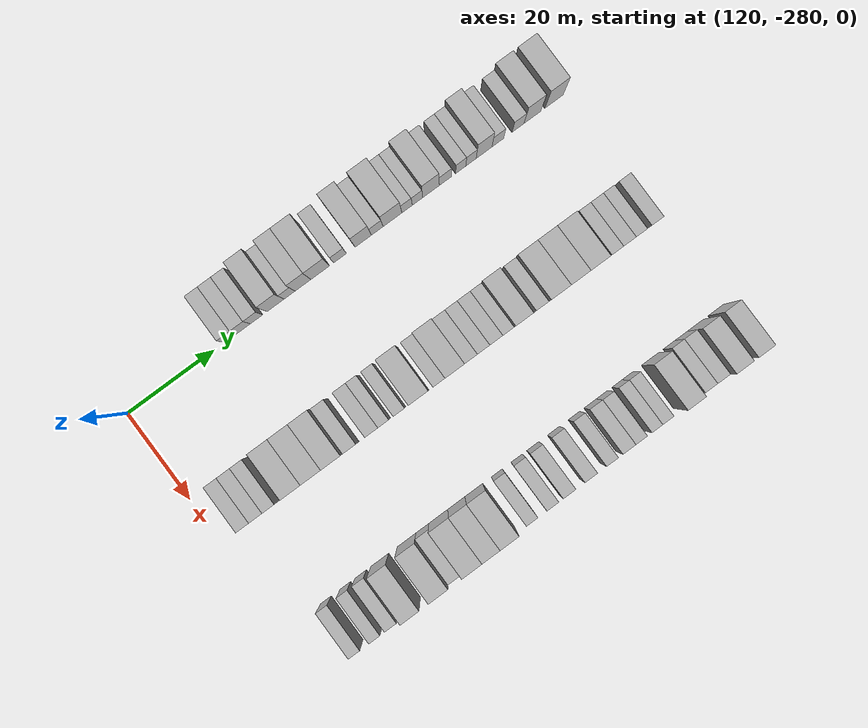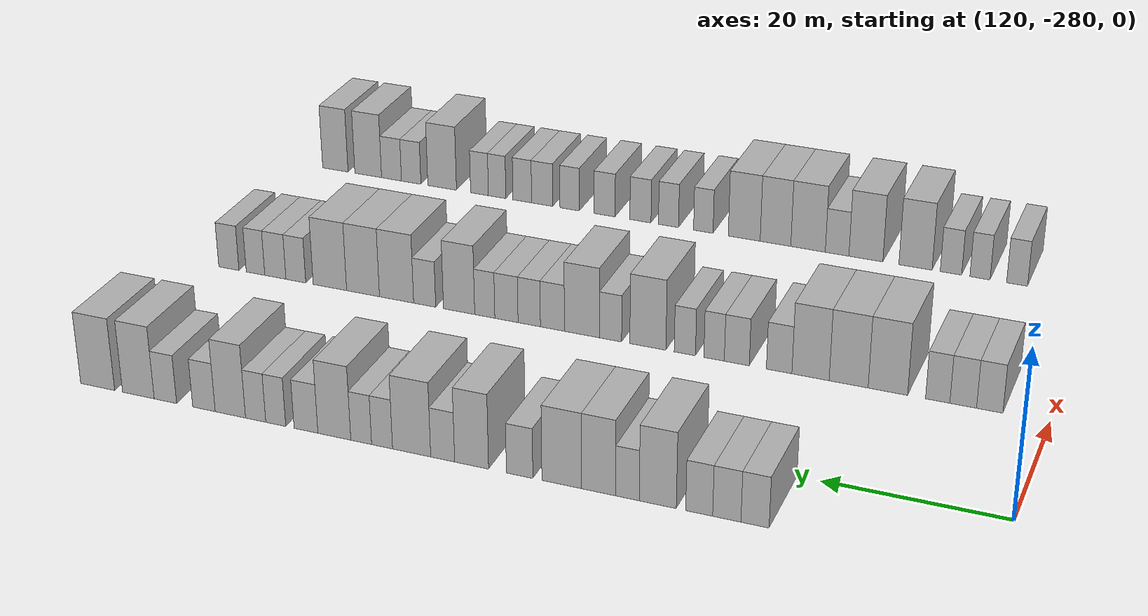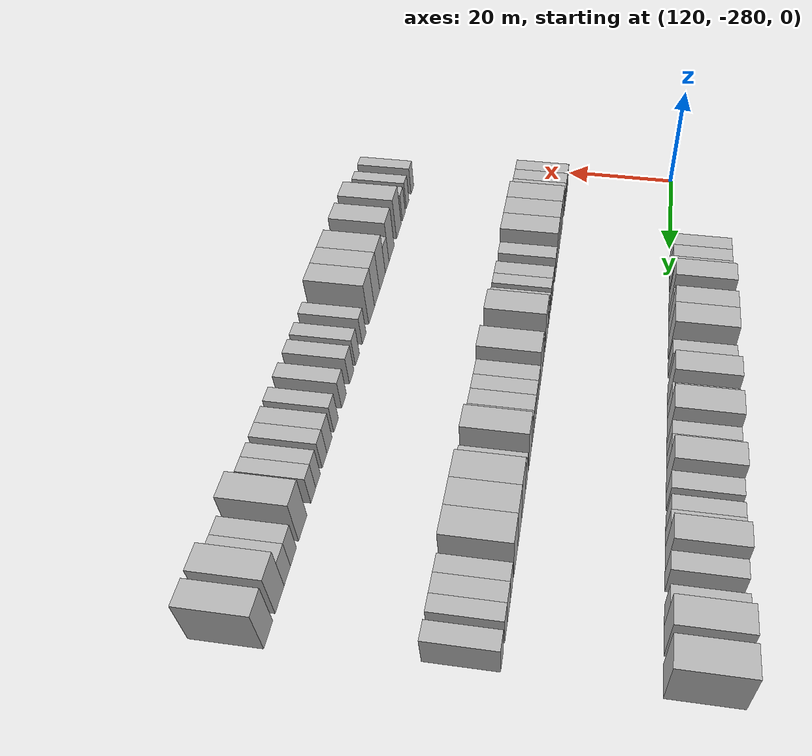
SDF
<sdf version="1.6">
 <world name="default">
  <model name="building_718">
   <static>1</static>
   <pose>115.0000 -256.0010 0 0.000000 0.000000 0.000000</pose>
   <link name="link">
    <pose>0 0 3.00 0 0 0</pose>
    <collision name="collision"><geometry><box><size>10.0000 2.9354 6.0000</size></box></geometry></collision>
    <visual name="visual">
     <cast_shadows>0</cast_shadows>
     <geometry><box><size>10.0000 2.9354 6.0000</size></box></geometry>
     <material>
      <script>
       <uri>model://HANNAS_wall/materials/scripts</uri>
       <uri>model://HANNAS_wall/materials/textures</uri>
       <name>vrc/HANNAS_wall</name>
      </script>
     </material>
    </visual>
   </link>
  </model>
  <model name="building_719">
   <static>1</static>
   <pose>115.0000 -253.0524 0 0.000000 0.000000 0.000000</pose>
   <link name="link">
    <pose>0 0 3.00 0 0 0</pose>
    <collision name="collision"><geometry><box><size>10.0000 2.9618 6.0000</size></box></geometry></collision>
    <visual name="visual">
     <cast_shadows>0</cast_shadows>
     <geometry><box><size>10.0000 2.9618 6.0000</size></box></geometry>
     <material>
      <script>
       <uri>model://HANNAS_wall/materials/scripts</uri>
       <uri>model://HANNAS_wall/materials/textures</uri>
       <name>vrc/HANNAS_wall</name>
      </script>
     </material>
    </visual>
   </link>
  </model>
  <model name="building_720">
   <static>1</static>
   <pose>115.0000 -250.1455 0 0.000000 0.000000 0.000000</pose>
   <link name="link">
    <pose>0 0 3.00 0 0 0</pose>
    <collision name="collision"><geometry><box><size>10.0000 2.8519 6.0000</size></box></geometry></collision>
    <visual name="visual">
     <cast_shadows>0</cast_shadows>
     <geometry><box><size>10.0000 2.8519 6.0000</size></box></geometry>
     <material>
      <script>
       <uri>model://HANNAS_wall/materials/scripts</uri>
       <uri>model://HANNAS_wall/materials/textures</uri>
       <name>vrc/HANNAS_wall</name>
      </script>
     </material>
    </visual>
   </link>
  </model>
  <model name="building_721">
   <static>1</static>
   <pose>115.0000 -245.7357 0 0.000000 0.000000 0.000000</pose>
   <link name="link">
    <pose>0 0 4.50 0 0 0</pose>
    <collision name="collision"><geometry><box><size>10.0000 3.9678 9.0000</size></box></geometry></collision>
    <visual name="visual">
     <cast_shadows>0</cast_shadows>
     <geometry><box><size>10.0000 3.9678 9.0000</size></box></geometry>
     <material>
      <script>
       <uri>model://HANNAS_wall/materials/scripts</uri>
       <uri>model://HANNAS_wall/materials/textures</uri>
       <name>vrc/HANNAS_wall</name>
      </script>
     </material>
    </visual>
   </link>
  </model>
  <model name="building_722">
   <static>1</static>
   <pose>115.0000 -242.4729 0 0.000000 0.000000 0.000000</pose>
   <link name="link">
    <pose>0 0 3.00 0 0 0</pose>
    <collision name="collision"><geometry><box><size>10.0000 2.5579 6.0000</size></box></geometry></collision>
    <visual name="visual">
     <cast_shadows>0</cast_shadows>
     <geometry><box><size>10.0000 2.5579 6.0000</size></box></geometry>
     <material>
      <script>
       <uri>model://HANNAS_wall/materials/scripts</uri>
       <uri>model://HANNAS_wall/materials/textures</uri>
       <name>vrc/HANNAS_wall</name>
      </script>
     </material>
    </visual>
   </link>
  </model>
  <model name="building_723">
   <static>1</static>
   <pose>115.0000 -239.3401 0 0.000000 0.000000 0.000000</pose>
   <link name="link">
    <pose>0 0 4.50 0 0 0</pose>
    <collision name="collision"><geometry><box><size>10.0000 3.7078 9.0000</size></box></geometry></collision>
    <visual name="visual">
     <cast_shadows>0</cast_shadows>
     <geometry><box><size>10.0000 3.7078 9.0000</size></box></geometry>
     <material>
      <script>
       <uri>model://HANNAS_wall/materials/scripts</uri>
       <uri>model://HANNAS_wall/materials/textures</uri>
       <name>vrc/HANNAS_wall</name>
      </script>
     </material>
    </visual>
   </link>
  </model>
  <model name="building_724">
   <static>1</static>
   <pose>115.0000 -235.3038 0 0.000000 0.000000 0.000000</pose>
   <link name="link">
    <pose>0 0 4.50 0 0 0</pose>
    <collision name="collision"><geometry><box><size>10.0000 4.3647 9.0000</size></box></geometry></collision>
    <visual name="visual">
     <cast_shadows>0</cast_shadows>
     <geometry><box><size>10.0000 4.3647 9.0000</size></box></geometry>
     <material>
      <script>
       <uri>model://HANNAS_wall/materials/scripts</uri>
       <uri>model://HANNAS_wall/materials/textures</uri>
       <name>vrc/HANNAS_wall</name>
      </script>
     </material>
    </visual>
   </link>
  </model>
  <model name="building_725">
   <static>1</static>
   <pose>115.0000 -230.6442 0 0.000000 0.000000 0.000000</pose>
   <link name="link">
    <pose>0 0 3.00 0 0 0</pose>
    <collision name="collision"><geometry><box><size>10.0000 2.9546 6.0000</size></box></geometry></collision>
    <visual name="visual">
     <cast_shadows>0</cast_shadows>
     <geometry><box><size>10.0000 2.9546 6.0000</size></box></geometry>
     <material>
      <script>
       <uri>model://HANNAS_wall/materials/scripts</uri>
       <uri>model://HANNAS_wall/materials/textures</uri>
       <name>vrc/HANNAS_wall</name>
      </script>
     </material>
    </visual>
   </link>
  </model>
  <model name="building_726">
   <static>1</static>
   <pose>115.0000 -225.2453 0 0.000000 0.000000 0.000000</pose>
   <link name="link">
    <pose>0 0 4.50 0 0 0</pose>
    <collision name="collision"><geometry><box><size>10.0000 3.8431 9.0000</size></box></geometry></collision>
    <visual name="visual">
     <cast_shadows>0</cast_shadows>
     <geometry><box><size>10.0000 3.8431 9.0000</size></box></geometry>
     <material>
      <script>
       <uri>model://HANNAS_wall/materials/scripts</uri>
       <uri>model://HANNAS_wall/materials/textures</uri>
       <name>vrc/HANNAS_wall</name>
      </script>
     </material>
    </visual>
   </link>
  </model>
  <model name="building_727">
   <static>1</static>
   <pose>115.0000 -221.9525 0 0.000000 0.000000 0.000000</pose>
   <link name="link">
    <pose>0 0 3.00 0 0 0</pose>
    <collision name="collision"><geometry><box><size>10.0000 2.7425 6.0000</size></box></geometry></collision>
    <visual name="visual">
     <cast_shadows>0</cast_shadows>
     <geometry><box><size>10.0000 2.7425 6.0000</size></box></geometry>
     <material>
      <script>
       <uri>model://HANNAS_wall/materials/scripts</uri>
       <uri>model://HANNAS_wall/materials/textures</uri>
       <name>vrc/HANNAS_wall</name>
      </script>
     </material>
    </visual>
   </link>
  </model>
  <model name="building_728">
   <static>1</static>
   <pose>115.0000 -218.3807 0 0.000000 0.000000 0.000000</pose>
   <link name="link">
    <pose>0 0 4.50 0 0 0</pose>
    <collision name="collision"><geometry><box><size>10.0000 4.4010 9.0000</size></box></geometry></collision>
    <visual name="visual">
     <cast_shadows>0</cast_shadows>
     <geometry><box><size>10.0000 4.4010 9.0000</size></box></geometry>
     <material>
      <script>
       <uri>model://HANNAS_wall/materials/scripts</uri>
       <uri>model://HANNAS_wall/materials/textures</uri>
       <name>vrc/HANNAS_wall</name>
      </script>
     </material>
    </visual>
   </link>
  </model>
  <model name="building_729">
   <static>1</static>
   <pose>115.0000 -214.9603 0 0.000000 0.000000 0.000000</pose>
   <link name="link">
    <pose>0 0 3.00 0 0 0</pose>
    <collision name="collision"><geometry><box><size>10.0000 2.4398 6.0000</size></box></geometry></collision>
    <visual name="visual">
     <cast_shadows>0</cast_shadows>
     <geometry><box><size>10.0000 2.4398 6.0000</size></box></geometry>
     <material>
      <script>
       <uri>model://HANNAS_wall/materials/scripts</uri>
       <uri>model://HANNAS_wall/materials/textures</uri>
       <name>vrc/HANNAS_wall</name>
      </script>
     </material>
    </visual>
   </link>
  </model>
  <model name="building_730">
   <static>1</static>
   <pose>115.0000 -212.5197 0 0.000000 0.000000 0.000000</pose>
   <link name="link">
    <pose>0 0 3.00 0 0 0</pose>
    <collision name="collision"><geometry><box><size>10.0000 2.4413 6.0000</size></box></geometry></collision>
    <visual name="visual">
     <cast_shadows>0</cast_shadows>
     <geometry><box><size>10.0000 2.4413 6.0000</size></box></geometry>
     <material>
      <script>
       <uri>model://HANNAS_wall/materials/scripts</uri>
       <uri>model://HANNAS_wall/materials/textures</uri>
       <name>vrc/HANNAS_wall</name>
      </script>
     </material>
    </visual>
   </link>
  </model>
  <model name="building_731">
   <static>1</static>
   <pose>115.0000 -209.3515 0 0.000000 0.000000 0.000000</pose>
   <link name="link">
    <pose>0 0 4.50 0 0 0</pose>
    <collision name="collision"><geometry><box><size>10.0000 3.8952 9.0000</size></box></geometry></collision>
    <visual name="visual">
     <cast_shadows>0</cast_shadows>
     <geometry><box><size>10.0000 3.8952 9.0000</size></box></geometry>
     <material>
      <script>
       <uri>model://HANNAS_wall/materials/scripts</uri>
       <uri>model://HANNAS_wall/materials/textures</uri>
       <name>vrc/HANNAS_wall</name>
      </script>
     </material>
    </visual>
   </link>
  </model>
  <model name="building_732">
   <static>1</static>
   <pose>115.0000 -205.9839 0 0.000000 0.000000 0.000000</pose>
   <link name="link">
    <pose>0 0 3.00 0 0 0</pose>
    <collision name="collision"><geometry><box><size>10.0000 2.8399 6.0000</size></box></geometry></collision>
    <visual name="visual">
     <cast_shadows>0</cast_shadows>
     <geometry><box><size>10.0000 2.8399 6.0000</size></box></geometry>
     <material>
      <script>
       <uri>model://HANNAS_wall/materials/scripts</uri>
       <uri>model://HANNAS_wall/materials/textures</uri>
       <name>vrc/HANNAS_wall</name>
      </script>
     </material>
    </visual>
   </link>
  </model>
  <model name="building_733">
   <static>1</static>
   <pose>115.0000 -202.3606 0 0.000000 0.000000 0.000000</pose>
   <link name="link">
    <pose>0 0 3.00 0 0 0</pose>
    <collision name="collision"><geometry><box><size>10.0000 2.4067 6.0000</size></box></geometry></collision>
    <visual name="visual">
     <cast_shadows>0</cast_shadows>
     <geometry><box><size>10.0000 2.4067 6.0000</size></box></geometry>
     <material>
      <script>
       <uri>model://HANNAS_wall/materials/scripts</uri>
       <uri>model://HANNAS_wall/materials/textures</uri>
       <name>vrc/HANNAS_wall</name>
      </script>
     </material>
    </visual>
   </link>
  </model>
  <model name="building_734">
   <static>1</static>
   <pose>115.0000 -199.9317 0 0.000000 0.000000 0.000000</pose>
   <link name="link">
    <pose>0 0 3.00 0 0 0</pose>
    <collision name="collision"><geometry><box><size>10.0000 2.4511 6.0000</size></box></geometry></collision>
    <visual name="visual">
     <cast_shadows>0</cast_shadows>
     <geometry><box><size>10.0000 2.4511 6.0000</size></box></geometry>
     <material>
      <script>
       <uri>model://HANNAS_wall/materials/scripts</uri>
       <uri>model://HANNAS_wall/materials/textures</uri>
       <name>vrc/HANNAS_wall</name>
      </script>
     </material>
    </visual>
   </link>
  </model>
  <model name="building_735">
   <static>1</static>
   <pose>115.0000 -196.8514 0 0.000000 0.000000 0.000000</pose>
   <link name="link">
    <pose>0 0 4.50 0 0 0</pose>
    <collision name="collision"><geometry><box><size>10.0000 3.7096 9.0000</size></box></geometry></collision>
    <visual name="visual">
     <cast_shadows>0</cast_shadows>
     <geometry><box><size>10.0000 3.7096 9.0000</size></box></geometry>
     <material>
      <script>
       <uri>model://HANNAS_wall/materials/scripts</uri>
       <uri>model://HANNAS_wall/materials/textures</uri>
       <name>vrc/HANNAS_wall</name>
      </script>
     </material>
    </visual>
   </link>
  </model>
  <model name="building_736">
   <static>1</static>
   <pose>115.0000 -193.6111 0 0.000000 0.000000 0.000000</pose>
   <link name="link">
    <pose>0 0 3.00 0 0 0</pose>
    <collision name="collision"><geometry><box><size>10.0000 2.7710 6.0000</size></box></geometry></collision>
    <visual name="visual">
     <cast_shadows>0</cast_shadows>
     <geometry><box><size>10.0000 2.7710 6.0000</size></box></geometry>
     <material>
      <script>
       <uri>model://HANNAS_wall/materials/scripts</uri>
       <uri>model://HANNAS_wall/materials/textures</uri>
       <name>vrc/HANNAS_wall</name>
      </script>
     </material>
    </visual>
   </link>
  </model>
  <model name="building_737">
   <static>1</static>
   <pose>115.0000 -188.8275 0 0.000000 0.000000 0.000000</pose>
   <link name="link">
    <pose>0 0 3.00 0 0 0</pose>
    <collision name="collision"><geometry><box><size>10.0000 2.7961 6.0000</size></box></geometry></collision>
    <visual name="visual">
     <cast_shadows>0</cast_shadows>
     <geometry><box><size>10.0000 2.7961 6.0000</size></box></geometry>
     <material>
      <script>
       <uri>model://HANNAS_wall/materials/scripts</uri>
       <uri>model://HANNAS_wall/materials/textures</uri>
       <name>vrc/HANNAS_wall</name>
      </script>
     </material>
    </visual>
   </link>
  </model>
  <model name="building_738">
   <static>1</static>
   <pose>115.0000 -185.4370 0 0.000000 0.000000 0.000000</pose>
   <link name="link">
    <pose>0 0 4.50 0 0 0</pose>
    <collision name="collision"><geometry><box><size>10.0000 3.9849 9.0000</size></box></geometry></collision>
    <visual name="visual">
     <cast_shadows>0</cast_shadows>
     <geometry><box><size>10.0000 3.9849 9.0000</size></box></geometry>
     <material>
      <script>
       <uri>model://HANNAS_wall/materials/scripts</uri>
       <uri>model://HANNAS_wall/materials/textures</uri>
       <name>vrc/HANNAS_wall</name>
      </script>
     </material>
    </visual>
   </link>
  </model>
  <model name="building_739">
   <static>1</static>
   <pose>115.0000 -180.2788 0 0.000000 0.000000 0.000000</pose>
   <link name="link">
    <pose>0 0 4.50 0 0 0</pose>
    <collision name="collision"><geometry><box><size>10.0000 4.3317 9.0000</size></box></geometry></collision>
    <visual name="visual">
     <cast_shadows>0</cast_shadows>
     <geometry><box><size>10.0000 4.3317 9.0000</size></box></geometry>
     <material>
      <script>
       <uri>model://HANNAS_wall/materials/scripts</uri>
       <uri>model://HANNAS_wall/materials/textures</uri>
       <name>vrc/HANNAS_wall</name>
      </script>
     </material>
    </visual>
   </link>
  </model>
  <model name="building_936">
   <static>1</static>
   <pose>145.0000 -273.3844 0 0.000000 0.000000 0.000000</pose>
   <link name="link">
    <pose>0 0 3.00 0 0 0</pose>
    <collision name="collision"><geometry><box><size>10.0000 2.8805 6.0000</size></box></geometry></collision>
    <visual name="visual">
     <cast_shadows>0</cast_shadows>
     <geometry><box><size>10.0000 2.8805 6.0000</size></box></geometry>
     <material>
      <script>
       <uri>model://HANNAS_wall/materials/scripts</uri>
       <uri>model://HANNAS_wall/materials/textures</uri>
       <name>vrc/HANNAS_wall</name>
      </script>
     </material>
    </visual>
   </link>
  </model>
  <model name="building_937">
   <static>1</static>
   <pose>145.0000 -270.4719 0 0.000000 0.000000 0.000000</pose>
   <link name="link">
    <pose>0 0 3.00 0 0 0</pose>
    <collision name="collision"><geometry><box><size>10.0000 2.9444 6.0000</size></box></geometry></collision>
    <visual name="visual">
     <cast_shadows>0</cast_shadows>
     <geometry><box><size>10.0000 2.9444 6.0000</size></box></geometry>
     <material>
      <script>
       <uri>model://HANNAS_wall/materials/scripts</uri>
       <uri>model://HANNAS_wall/materials/textures</uri>
       <name>vrc/HANNAS_wall</name>
      </script>
     </material>
    </visual>
   </link>
  </model>
  <model name="building_938">
   <static>1</static>
   <pose>145.0000 -267.6510 0 0.000000 0.000000 0.000000</pose>
   <link name="link">
    <pose>0 0 3.00 0 0 0</pose>
    <collision name="collision"><geometry><box><size>10.0000 2.6975 6.0000</size></box></geometry></collision>
    <visual name="visual">
     <cast_shadows>0</cast_shadows>
     <geometry><box><size>10.0000 2.6975 6.0000</size></box></geometry>
     <material>
      <script>
       <uri>model://HANNAS_wall/materials/scripts</uri>
       <uri>model://HANNAS_wall/materials/textures</uri>
       <name>vrc/HANNAS_wall</name>
      </script>
     </material>
    </visual>
   </link>
  </model>
  <model name="building_939">
   <static>1</static>
   <pose>145.0000 -262.0794 0 0.000000 0.000000 0.000000</pose>
   <link name="link">
    <pose>0 0 4.50 0 0 0</pose>
    <collision name="collision"><geometry><box><size>10.0000 4.4457 9.0000</size></box></geometry></collision>
    <visual name="visual">
     <cast_shadows>0</cast_shadows>
     <geometry><box><size>10.0000 4.4457 9.0000</size></box></geometry>
     <material>
      <script>
       <uri>model://HANNAS_wall/materials/scripts</uri>
       <uri>model://HANNAS_wall/materials/textures</uri>
       <name>vrc/HANNAS_wall</name>
      </script>
     </material>
    </visual>
   </link>
  </model>
  <model name="building_940">
   <static>1</static>
   <pose>145.0000 -257.6379 0 0.000000 0.000000 0.000000</pose>
   <link name="link">
    <pose>0 0 4.50 0 0 0</pose>
    <collision name="collision"><geometry><box><size>10.0000 4.4373 9.0000</size></box></geometry></collision>
    <visual name="visual">
     <cast_shadows>0</cast_shadows>
     <geometry><box><size>10.0000 4.4373 9.0000</size></box></geometry>
     <material>
      <script>
       <uri>model://HANNAS_wall/materials/scripts</uri>
       <uri>model://HANNAS_wall/materials/textures</uri>
       <name>vrc/HANNAS_wall</name>
      </script>
     </material>
    </visual>
   </link>
  </model>
  <model name="building_941">
   <static>1</static>
   <pose>145.0000 -253.2735 0 0.000000 0.000000 0.000000</pose>
   <link name="link">
    <pose>0 0 4.50 0 0 0</pose>
    <collision name="collision"><geometry><box><size>10.0000 4.2914 9.0000</size></box></geometry></collision>
    <visual name="visual">
     <cast_shadows>0</cast_shadows>
     <geometry><box><size>10.0000 4.2914 9.0000</size></box></geometry>
     <material>
      <script>
       <uri>model://HANNAS_wall/materials/scripts</uri>
       <uri>model://HANNAS_wall/materials/textures</uri>
       <name>vrc/HANNAS_wall</name>
      </script>
     </material>
    </visual>
   </link>
  </model>
  <model name="building_942">
   <static>1</static>
   <pose>145.0000 -249.6460 0 0.000000 0.000000 0.000000</pose>
   <link name="link">
    <pose>0 0 3.00 0 0 0</pose>
    <collision name="collision"><geometry><box><size>10.0000 2.9637 6.0000</size></box></geometry></collision>
    <visual name="visual">
     <cast_shadows>0</cast_shadows>
     <geometry><box><size>10.0000 2.9637 6.0000</size></box></geometry>
     <material>
      <script>
       <uri>model://HANNAS_wall/materials/scripts</uri>
       <uri>model://HANNAS_wall/materials/textures</uri>
       <name>vrc/HANNAS_wall</name>
      </script>
     </material>
    </visual>
   </link>
  </model>
  <model name="building_943">
   <static>1</static>
   <pose>145.0000 -244.6932 0 0.000000 0.000000 0.000000</pose>
   <link name="link">
    <pose>0 0 3.00 0 0 0</pose>
    <collision name="collision"><geometry><box><size>10.0000 2.9417 6.0000</size></box></geometry></collision>
    <visual name="visual">
     <cast_shadows>0</cast_shadows>
     <geometry><box><size>10.0000 2.9417 6.0000</size></box></geometry>
     <material>
      <script>
       <uri>model://HANNAS_wall/materials/scripts</uri>
       <uri>model://HANNAS_wall/materials/textures</uri>
       <name>vrc/HANNAS_wall</name>
      </script>
     </material>
    </visual>
   </link>
  </model>
  <model name="building_944">
   <static>1</static>
   <pose>145.0000 -242.0116 0 0.000000 0.000000 0.000000</pose>
   <link name="link">
    <pose>0 0 3.00 0 0 0</pose>
    <collision name="collision"><geometry><box><size>10.0000 2.4215 6.0000</size></box></geometry></collision>
    <visual name="visual">
     <cast_shadows>0</cast_shadows>
     <geometry><box><size>10.0000 2.4215 6.0000</size></box></geometry>
     <material>
      <script>
       <uri>model://HANNAS_wall/materials/scripts</uri>
       <uri>model://HANNAS_wall/materials/textures</uri>
       <name>vrc/HANNAS_wall</name>
      </script>
     </material>
    </visual>
   </link>
  </model>
  <model name="building_945">
   <static>1</static>
   <pose>145.0000 -238.5319 0 0.000000 0.000000 0.000000</pose>
   <link name="link">
    <pose>0 0 3.00 0 0 0</pose>
    <collision name="collision"><geometry><box><size>10.0000 2.5379 6.0000</size></box></geometry></collision>
    <visual name="visual">
     <cast_shadows>0</cast_shadows>
     <geometry><box><size>10.0000 2.5379 6.0000</size></box></geometry>
     <material>
      <script>
       <uri>model://HANNAS_wall/materials/scripts</uri>
       <uri>model://HANNAS_wall/materials/textures</uri>
       <name>vrc/HANNAS_wall</name>
      </script>
     </material>
    </visual>
   </link>
  </model>
  <model name="building_946">
   <static>1</static>
   <pose>145.0000 -234.0834 0 0.000000 0.000000 0.000000</pose>
   <link name="link">
    <pose>0 0 4.50 0 0 0</pose>
    <collision name="collision"><geometry><box><size>10.0000 4.3590 9.0000</size></box></geometry></collision>
    <visual name="visual">
     <cast_shadows>0</cast_shadows>
     <geometry><box><size>10.0000 4.3590 9.0000</size></box></geometry>
     <material>
      <script>
       <uri>model://HANNAS_wall/materials/scripts</uri>
       <uri>model://HANNAS_wall/materials/textures</uri>
       <name>vrc/HANNAS_wall</name>
      </script>
     </material>
    </visual>
   </link>
  </model>
  <model name="building_947">
   <static>1</static>
   <pose>145.0000 -229.5464 0 0.000000 0.000000 0.000000</pose>
   <link name="link">
    <pose>0 0 3.00 0 0 0</pose>
    <collision name="collision"><geometry><box><size>10.0000 2.7151 6.0000</size></box></geometry></collision>
    <visual name="visual">
     <cast_shadows>0</cast_shadows>
     <geometry><box><size>10.0000 2.7151 6.0000</size></box></geometry>
     <material>
      <script>
       <uri>model://HANNAS_wall/materials/scripts</uri>
       <uri>model://HANNAS_wall/materials/textures</uri>
       <name>vrc/HANNAS_wall</name>
      </script>
     </material>
    </visual>
   </link>
  </model>
  <model name="building_948">
   <static>1</static>
   <pose>145.0000 -226.0344 0 0.000000 0.000000 0.000000</pose>
   <link name="link">
    <pose>0 0 4.50 0 0 0</pose>
    <collision name="collision"><geometry><box><size>10.0000 4.3088 9.0000</size></box></geometry></collision>
    <visual name="visual">
     <cast_shadows>0</cast_shadows>
     <geometry><box><size>10.0000 4.3088 9.0000</size></box></geometry>
     <material>
      <script>
       <uri>model://HANNAS_wall/materials/scripts</uri>
       <uri>model://HANNAS_wall/materials/textures</uri>
       <name>vrc/HANNAS_wall</name>
      </script>
     </material>
    </visual>
   </link>
  </model>
  <model name="building_949">
   <static>1</static>
   <pose>145.0000 -222.3872 0 0.000000 0.000000 0.000000</pose>
   <link name="link">
    <pose>0 0 3.00 0 0 0</pose>
    <collision name="collision"><geometry><box><size>10.0000 2.9856 6.0000</size></box></geometry></collision>
    <visual name="visual">
     <cast_shadows>0</cast_shadows>
     <geometry><box><size>10.0000 2.9856 6.0000</size></box></geometry>
     <material>
      <script>
       <uri>model://HANNAS_wall/materials/scripts</uri>
       <uri>model://HANNAS_wall/materials/textures</uri>
       <name>vrc/HANNAS_wall</name>
      </script>
     </material>
    </visual>
   </link>
  </model>
  <model name="building_950">
   <static>1</static>
   <pose>145.0000 -219.4934 0 0.000000 0.000000 0.000000</pose>
   <link name="link">
    <pose>0 0 3.00 0 0 0</pose>
    <collision name="collision"><geometry><box><size>10.0000 2.8021 6.0000</size></box></geometry></collision>
    <visual name="visual">
     <cast_shadows>0</cast_shadows>
     <geometry><box><size>10.0000 2.8021 6.0000</size></box></geometry>
     <material>
      <script>
       <uri>model://HANNAS_wall/materials/scripts</uri>
       <uri>model://HANNAS_wall/materials/textures</uri>
       <name>vrc/HANNAS_wall</name>
      </script>
     </material>
    </visual>
   </link>
  </model>
  <model name="building_951">
   <static>1</static>
   <pose>145.0000 -216.6288 0 0.000000 0.000000 0.000000</pose>
   <link name="link">
    <pose>0 0 3.00 0 0 0</pose>
    <collision name="collision"><geometry><box><size>10.0000 2.9272 6.0000</size></box></geometry></collision>
    <visual name="visual">
     <cast_shadows>0</cast_shadows>
     <geometry><box><size>10.0000 2.9272 6.0000</size></box></geometry>
     <material>
      <script>
       <uri>model://HANNAS_wall/materials/scripts</uri>
       <uri>model://HANNAS_wall/materials/textures</uri>
       <name>vrc/HANNAS_wall</name>
      </script>
     </material>
    </visual>
   </link>
  </model>
  <model name="building_952">
   <static>1</static>
   <pose>145.0000 -213.8873 0 0.000000 0.000000 0.000000</pose>
   <link name="link">
    <pose>0 0 3.00 0 0 0</pose>
    <collision name="collision"><geometry><box><size>10.0000 2.5556 6.0000</size></box></geometry></collision>
    <visual name="visual">
     <cast_shadows>0</cast_shadows>
     <geometry><box><size>10.0000 2.5556 6.0000</size></box></geometry>
     <material>
      <script>
       <uri>model://HANNAS_wall/materials/scripts</uri>
       <uri>model://HANNAS_wall/materials/textures</uri>
       <name>vrc/HANNAS_wall</name>
      </script>
     </material>
    </visual>
   </link>
  </model>
  <model name="building_953">
   <static>1</static>
   <pose>145.0000 -210.6098 0 0.000000 0.000000 0.000000</pose>
   <link name="link">
    <pose>0 0 4.50 0 0 0</pose>
    <collision name="collision"><geometry><box><size>10.0000 3.9994 9.0000</size></box></geometry></collision>
    <visual name="visual">
     <cast_shadows>0</cast_shadows>
     <geometry><box><size>10.0000 3.9994 9.0000</size></box></geometry>
     <material>
      <script>
       <uri>model://HANNAS_wall/materials/scripts</uri>
       <uri>model://HANNAS_wall/materials/textures</uri>
       <name>vrc/HANNAS_wall</name>
      </script>
     </material>
    </visual>
   </link>
  </model>
  <model name="building_954">
   <static>1</static>
   <pose>145.0000 -206.1807 0 0.000000 0.000000 0.000000</pose>
   <link name="link">
    <pose>0 0 3.00 0 0 0</pose>
    <collision name="collision"><geometry><box><size>10.0000 2.8588 6.0000</size></box></geometry></collision>
    <visual name="visual">
     <cast_shadows>0</cast_shadows>
     <geometry><box><size>10.0000 2.8588 6.0000</size></box></geometry>
     <material>
      <script>
       <uri>model://HANNAS_wall/materials/scripts</uri>
       <uri>model://HANNAS_wall/materials/textures</uri>
       <name>vrc/HANNAS_wall</name>
      </script>
     </material>
    </visual>
   </link>
  </model>
  <model name="building_955">
   <static>1</static>
   <pose>145.0000 -202.5217 0 0.000000 0.000000 0.000000</pose>
   <link name="link">
    <pose>0 0 4.50 0 0 0</pose>
    <collision name="collision"><geometry><box><size>10.0000 4.4594 9.0000</size></box></geometry></collision>
    <visual name="visual">
     <cast_shadows>0</cast_shadows>
     <geometry><box><size>10.0000 4.4594 9.0000</size></box></geometry>
     <material>
      <script>
       <uri>model://HANNAS_wall/materials/scripts</uri>
       <uri>model://HANNAS_wall/materials/textures</uri>
       <name>vrc/HANNAS_wall</name>
      </script>
     </material>
    </visual>
   </link>
  </model>
  <model name="building_956">
   <static>1</static>
   <pose>145.0000 -198.1251 0 0.000000 0.000000 0.000000</pose>
   <link name="link">
    <pose>0 0 4.50 0 0 0</pose>
    <collision name="collision"><geometry><box><size>10.0000 4.3338 9.0000</size></box></geometry></collision>
    <visual name="visual">
     <cast_shadows>0</cast_shadows>
     <geometry><box><size>10.0000 4.3338 9.0000</size></box></geometry>
     <material>
      <script>
       <uri>model://HANNAS_wall/materials/scripts</uri>
       <uri>model://HANNAS_wall/materials/textures</uri>
       <name>vrc/HANNAS_wall</name>
      </script>
     </material>
    </visual>
   </link>
  </model>
  <model name="building_957">
   <static>1</static>
   <pose>145.0000 -193.7328 0 0.000000 0.000000 0.000000</pose>
   <link name="link">
    <pose>0 0 4.50 0 0 0</pose>
    <collision name="collision"><geometry><box><size>10.0000 4.4508 9.0000</size></box></geometry></collision>
    <visual name="visual">
     <cast_shadows>0</cast_shadows>
     <geometry><box><size>10.0000 4.4508 9.0000</size></box></geometry>
     <material>
      <script>
       <uri>model://HANNAS_wall/materials/scripts</uri>
       <uri>model://HANNAS_wall/materials/textures</uri>
       <name>vrc/HANNAS_wall</name>
      </script>
     </material>
    </visual>
   </link>
  </model>
  <model name="building_958">
   <static>1</static>
   <pose>145.0000 -189.1705 0 0.000000 0.000000 0.000000</pose>
   <link name="link">
    <pose>0 0 3.00 0 0 0</pose>
    <collision name="collision"><geometry><box><size>10.0000 2.6737 6.0000</size></box></geometry></collision>
    <visual name="visual">
     <cast_shadows>0</cast_shadows>
     <geometry><box><size>10.0000 2.6737 6.0000</size></box></geometry>
     <material>
      <script>
       <uri>model://HANNAS_wall/materials/scripts</uri>
       <uri>model://HANNAS_wall/materials/textures</uri>
       <name>vrc/HANNAS_wall</name>
      </script>
     </material>
    </visual>
   </link>
  </model>
  <model name="building_959">
   <static>1</static>
   <pose>145.0000 -186.3980 0 0.000000 0.000000 0.000000</pose>
   <link name="link">
    <pose>0 0 3.00 0 0 0</pose>
    <collision name="collision"><geometry><box><size>10.0000 2.8713 6.0000</size></box></geometry></collision>
    <visual name="visual">
     <cast_shadows>0</cast_shadows>
     <geometry><box><size>10.0000 2.8713 6.0000</size></box></geometry>
     <material>
      <script>
       <uri>model://HANNAS_wall/materials/scripts</uri>
       <uri>model://HANNAS_wall/materials/textures</uri>
       <name>vrc/HANNAS_wall</name>
      </script>
     </material>
    </visual>
   </link>
  </model>
  <model name="building_960">
   <static>1</static>
   <pose>145.0000 -183.6985 0 0.000000 0.000000 0.000000</pose>
   <link name="link">
    <pose>0 0 3.00 0 0 0</pose>
    <collision name="collision"><geometry><box><size>10.0000 2.5277 6.0000</size></box></geometry></collision>
    <visual name="visual">
     <cast_shadows>0</cast_shadows>
     <geometry><box><size>10.0000 2.5277 6.0000</size></box></geometry>
     <material>
      <script>
       <uri>model://HANNAS_wall/materials/scripts</uri>
       <uri>model://HANNAS_wall/materials/textures</uri>
       <name>vrc/HANNAS_wall</name>
      </script>
     </material>
    </visual>
   </link>
  </model>
  <model name="building_961">
   <static>1</static>
   <pose>145.0000 -180.0477 0 0.000000 0.000000 0.000000</pose>
   <link name="link">
    <pose>0 0 3.00 0 0 0</pose>
    <collision name="collision"><geometry><box><size>10.0000 2.7739 6.0000</size></box></geometry></collision>
    <visual name="visual">
     <cast_shadows>0</cast_shadows>
     <geometry><box><size>10.0000 2.7739 6.0000</size></box></geometry>
     <material>
      <script>
       <uri>model://HANNAS_wall/materials/scripts</uri>
       <uri>model://HANNAS_wall/materials/textures</uri>
       <name>vrc/HANNAS_wall</name>
      </script>
     </material>
    </visual>
   </link>
  </model>
  <model name="building_1170">
   <static>1</static>
   <pose>175.0000 -270.4908 0 0.000000 0.000000 0.000000</pose>
   <link name="link">
    <pose>0 0 3.00 0 0 0</pose>
    <collision name="collision"><geometry><box><size>10.0000 2.5319 6.0000</size></box></geometry></collision>
    <visual name="visual">
     <cast_shadows>0</cast_shadows>
     <geometry><box><size>10.0000 2.5319 6.0000</size></box></geometry>
     <material>
      <script>
       <uri>model://HANNAS_wall/materials/scripts</uri>
       <uri>model://HANNAS_wall/materials/textures</uri>
       <name>vrc/HANNAS_wall</name>
      </script>
     </material>
    </visual>
   </link>
  </model>
  <model name="building_1171">
   <static>1</static>
   <pose>175.0000 -265.9910 0 0.000000 0.000000 0.000000</pose>
   <link name="link">
    <pose>0 0 3.00 0 0 0</pose>
    <collision name="collision"><geometry><box><size>10.0000 2.4677 6.0000</size></box></geometry></collision>
    <visual name="visual">
     <cast_shadows>0</cast_shadows>
     <geometry><box><size>10.0000 2.4677 6.0000</size></box></geometry>
     <material>
      <script>
       <uri>model://HANNAS_wall/materials/scripts</uri>
       <uri>model://HANNAS_wall/materials/textures</uri>
       <name>vrc/HANNAS_wall</name>
      </script>
     </material>
    </visual>
   </link>
  </model>
  <model name="building_1172">
   <static>1</static>
   <pose>175.0000 -262.4389 0 0.000000 0.000000 0.000000</pose>
   <link name="link">
    <pose>0 0 3.00 0 0 0</pose>
    <collision name="collision"><geometry><box><size>10.0000 2.6365 6.0000</size></box></geometry></collision>
    <visual name="visual">
     <cast_shadows>0</cast_shadows>
     <geometry><box><size>10.0000 2.6365 6.0000</size></box></geometry>
     <material>
      <script>
       <uri>model://HANNAS_wall/materials/scripts</uri>
       <uri>model://HANNAS_wall/materials/textures</uri>
       <name>vrc/HANNAS_wall</name>
      </script>
     </material>
    </visual>
   </link>
  </model>
  <model name="building_1173">
   <static>1</static>
   <pose>175.0000 -258.0575 0 0.000000 0.000000 0.000000</pose>
   <link name="link">
    <pose>0 0 4.50 0 0 0</pose>
    <collision name="collision"><geometry><box><size>10.0000 4.1262 9.0000</size></box></geometry></collision>
    <visual name="visual">
     <cast_shadows>0</cast_shadows>
     <geometry><box><size>10.0000 4.1262 9.0000</size></box></geometry>
     <material>
      <script>
       <uri>model://HANNAS_wall/materials/scripts</uri>
       <uri>model://HANNAS_wall/materials/textures</uri>
       <name>vrc/HANNAS_wall</name>
      </script>
     </material>
    </visual>
   </link>
  </model>
  <model name="building_1174">
   <static>1</static>
   <pose>175.0000 -251.8542 0 0.000000 0.000000 0.000000</pose>
   <link name="link">
    <pose>0 0 4.50 0 0 0</pose>
    <collision name="collision"><geometry><box><size>10.0000 4.2805 9.0000</size></box></geometry></collision>
    <visual name="visual">
     <cast_shadows>0</cast_shadows>
     <geometry><box><size>10.0000 4.2805 9.0000</size></box></geometry>
     <material>
      <script>
       <uri>model://HANNAS_wall/materials/scripts</uri>
       <uri>model://HANNAS_wall/materials/textures</uri>
       <name>vrc/HANNAS_wall</name>
      </script>
     </material>
    </visual>
   </link>
  </model>
  <model name="building_1175">
   <static>1</static>
   <pose>175.0000 -248.2151 0 0.000000 0.000000 0.000000</pose>
   <link name="link">
    <pose>0 0 3.00 0 0 0</pose>
    <collision name="collision"><geometry><box><size>10.0000 2.9976 6.0000</size></box></geometry></collision>
    <visual name="visual">
     <cast_shadows>0</cast_shadows>
     <geometry><box><size>10.0000 2.9976 6.0000</size></box></geometry>
     <material>
      <script>
       <uri>model://HANNAS_wall/materials/scripts</uri>
       <uri>model://HANNAS_wall/materials/textures</uri>
       <name>vrc/HANNAS_wall</name>
      </script>
     </material>
    </visual>
   </link>
  </model>
  <model name="building_1176">
   <static>1</static>
   <pose>175.0000 -244.5071 0 0.000000 0.000000 0.000000</pose>
   <link name="link">
    <pose>0 0 4.50 0 0 0</pose>
    <collision name="collision"><geometry><box><size>10.0000 4.4184 9.0000</size></box></geometry></collision>
    <visual name="visual">
     <cast_shadows>0</cast_shadows>
     <geometry><box><size>10.0000 4.4184 9.0000</size></box></geometry>
     <material>
      <script>
       <uri>model://HANNAS_wall/materials/scripts</uri>
       <uri>model://HANNAS_wall/materials/textures</uri>
       <name>vrc/HANNAS_wall</name>
      </script>
     </material>
    </visual>
   </link>
  </model>
  <model name="building_1177">
   <static>1</static>
   <pose>175.0000 -240.3167 0 0.000000 0.000000 0.000000</pose>
   <link name="link">
    <pose>0 0 4.50 0 0 0</pose>
    <collision name="collision"><geometry><box><size>10.0000 3.9624 9.0000</size></box></geometry></collision>
    <visual name="visual">
     <cast_shadows>0</cast_shadows>
     <geometry><box><size>10.0000 3.9624 9.0000</size></box></geometry>
     <material>
      <script>
       <uri>model://HANNAS_wall/materials/scripts</uri>
       <uri>model://HANNAS_wall/materials/textures</uri>
       <name>vrc/HANNAS_wall</name>
      </script>
     </material>
    </visual>
   </link>
  </model>
  <model name="building_1178">
   <static>1</static>
   <pose>175.0000 -236.2546 0 0.000000 0.000000 0.000000</pose>
   <link name="link">
    <pose>0 0 4.50 0 0 0</pose>
    <collision name="collision"><geometry><box><size>10.0000 4.1618 9.0000</size></box></geometry></collision>
    <visual name="visual">
     <cast_shadows>0</cast_shadows>
     <geometry><box><size>10.0000 4.1618 9.0000</size></box></geometry>
     <material>
      <script>
       <uri>model://HANNAS_wall/materials/scripts</uri>
       <uri>model://HANNAS_wall/materials/textures</uri>
       <name>vrc/HANNAS_wall</name>
      </script>
     </material>
    </visual>
   </link>
  </model>
  <model name="building_1179">
   <static>1</static>
   <pose>175.0000 -230.8869 0 0.000000 0.000000 0.000000</pose>
   <link name="link">
    <pose>0 0 3.00 0 0 0</pose>
    <collision name="collision"><geometry><box><size>10.0000 2.5736 6.0000</size></box></geometry></collision>
    <visual name="visual">
     <cast_shadows>0</cast_shadows>
     <geometry><box><size>10.0000 2.5736 6.0000</size></box></geometry>
     <material>
      <script>
       <uri>model://HANNAS_wall/materials/scripts</uri>
       <uri>model://HANNAS_wall/materials/textures</uri>
       <name>vrc/HANNAS_wall</name>
      </script>
     </material>
    </visual>
   </link>
  </model>
  <model name="building_1180">
   <static>1</static>
   <pose>175.0000 -226.2607 0 0.000000 0.000000 0.000000</pose>
   <link name="link">
    <pose>0 0 3.00 0 0 0</pose>
    <collision name="collision"><geometry><box><size>10.0000 2.6788 6.0000</size></box></geometry></collision>
    <visual name="visual">
     <cast_shadows>0</cast_shadows>
     <geometry><box><size>10.0000 2.6788 6.0000</size></box></geometry>
     <material>
      <script>
       <uri>model://HANNAS_wall/materials/scripts</uri>
       <uri>model://HANNAS_wall/materials/textures</uri>
       <name>vrc/HANNAS_wall</name>
      </script>
     </material>
    </visual>
   </link>
  </model>
  <model name="building_1181">
   <static>1</static>
   <pose>175.0000 -222.4995 0 0.000000 0.000000 0.000000</pose>
   <link name="link">
    <pose>0 0 3.00 0 0 0</pose>
    <collision name="collision"><geometry><box><size>10.0000 2.8435 6.0000</size></box></geometry></collision>
    <visual name="visual">
     <cast_shadows>0</cast_shadows>
     <geometry><box><size>10.0000 2.8435 6.0000</size></box></geometry>
     <material>
      <script>
       <uri>model://HANNAS_wall/materials/scripts</uri>
       <uri>model://HANNAS_wall/materials/textures</uri>
       <name>vrc/HANNAS_wall</name>
      </script>
     </material>
    </visual>
   </link>
  </model>
  <model name="building_1182">
   <static>1</static>
   <pose>175.0000 -217.6476 0 0.000000 0.000000 0.000000</pose>
   <link name="link">
    <pose>0 0 3.00 0 0 0</pose>
    <collision name="collision"><geometry><box><size>10.0000 2.8603 6.0000</size></box></geometry></collision>
    <visual name="visual">
     <cast_shadows>0</cast_shadows>
     <geometry><box><size>10.0000 2.8603 6.0000</size></box></geometry>
     <material>
      <script>
       <uri>model://HANNAS_wall/materials/scripts</uri>
       <uri>model://HANNAS_wall/materials/textures</uri>
       <name>vrc/HANNAS_wall</name>
      </script>
     </material>
    </visual>
   </link>
  </model>
  <model name="building_1183">
   <static>1</static>
   <pose>175.0000 -212.8766 0 0.000000 0.000000 0.000000</pose>
   <link name="link">
    <pose>0 0 3.00 0 0 0</pose>
    <collision name="collision"><geometry><box><size>10.0000 2.6818 6.0000</size></box></geometry></collision>
    <visual name="visual">
     <cast_shadows>0</cast_shadows>
     <geometry><box><size>10.0000 2.6818 6.0000</size></box></geometry>
     <material>
      <script>
       <uri>model://HANNAS_wall/materials/scripts</uri>
       <uri>model://HANNAS_wall/materials/textures</uri>
       <name>vrc/HANNAS_wall</name>
      </script>
     </material>
    </visual>
   </link>
  </model>
  <model name="building_1184">
   <static>1</static>
   <pose>175.0000 -209.0699 0 0.000000 0.000000 0.000000</pose>
   <link name="link">
    <pose>0 0 3.00 0 0 0</pose>
    <collision name="collision"><geometry><box><size>10.0000 2.9315 6.0000</size></box></geometry></collision>
    <visual name="visual">
     <cast_shadows>0</cast_shadows>
     <geometry><box><size>10.0000 2.9315 6.0000</size></box></geometry>
     <material>
      <script>
       <uri>model://HANNAS_wall/materials/scripts</uri>
       <uri>model://HANNAS_wall/materials/textures</uri>
       <name>vrc/HANNAS_wall</name>
      </script>
     </material>
    </visual>
   </link>
  </model>
  <model name="building_1185">
   <static>1</static>
   <pose>175.0000 -206.3040 0 0.000000 0.000000 0.000000</pose>
   <link name="link">
    <pose>0 0 3.00 0 0 0</pose>
    <collision name="collision"><geometry><box><size>10.0000 2.6003 6.0000</size></box></geometry></collision>
    <visual name="visual">
     <cast_shadows>0</cast_shadows>
     <geometry><box><size>10.0000 2.6003 6.0000</size></box></geometry>
     <material>
      <script>
       <uri>model://HANNAS_wall/materials/scripts</uri>
       <uri>model://HANNAS_wall/materials/textures</uri>
       <name>vrc/HANNAS_wall</name>
      </script>
     </material>
    </visual>
   </link>
  </model>
  <model name="building_1186">
   <static>1</static>
   <pose>175.0000 -202.7775 0 0.000000 0.000000 0.000000</pose>
   <link name="link">
    <pose>0 0 3.00 0 0 0</pose>
    <collision name="collision"><geometry><box><size>10.0000 2.4527 6.0000</size></box></geometry></collision>
    <visual name="visual">
     <cast_shadows>0</cast_shadows>
     <geometry><box><size>10.0000 2.4527 6.0000</size></box></geometry>
     <material>
      <script>
       <uri>model://HANNAS_wall/materials/scripts</uri>
       <uri>model://HANNAS_wall/materials/textures</uri>
       <name>vrc/HANNAS_wall</name>
      </script>
     </material>
    </visual>
   </link>
  </model>
  <model name="building_1187">
   <static>1</static>
   <pose>175.0000 -200.2911 0 0.000000 0.000000 0.000000</pose>
   <link name="link">
    <pose>0 0 3.00 0 0 0</pose>
    <collision name="collision"><geometry><box><size>10.0000 2.5200 6.0000</size></box></geometry></collision>
    <visual name="visual">
     <cast_shadows>0</cast_shadows>
     <geometry><box><size>10.0000 2.5200 6.0000</size></box></geometry>
     <material>
      <script>
       <uri>model://HANNAS_wall/materials/scripts</uri>
       <uri>model://HANNAS_wall/materials/textures</uri>
       <name>vrc/HANNAS_wall</name>
      </script>
     </material>
    </visual>
   </link>
  </model>
  <model name="building_1188">
   <static>1</static>
   <pose>175.0000 -194.9816 0 0.000000 0.000000 0.000000</pose>
   <link name="link">
    <pose>0 0 4.50 0 0 0</pose>
    <collision name="collision"><geometry><box><size>10.0000 4.0992 9.0000</size></box></geometry></collision>
    <visual name="visual">
     <cast_shadows>0</cast_shadows>
     <geometry><box><size>10.0000 4.0992 9.0000</size></box></geometry>
     <material>
      <script>
       <uri>model://HANNAS_wall/materials/scripts</uri>
       <uri>model://HANNAS_wall/materials/textures</uri>
       <name>vrc/HANNAS_wall</name>
      </script>
     </material>
    </visual>
   </link>
  </model>
  <model name="building_1189">
   <static>1</static>
   <pose>175.0000 -190.5287 0 0.000000 0.000000 0.000000</pose>
   <link name="link">
    <pose>0 0 3.00 0 0 0</pose>
    <collision name="collision"><geometry><box><size>10.0000 2.8065 6.0000</size></box></geometry></collision>
    <visual name="visual">
     <cast_shadows>0</cast_shadows>
     <geometry><box><size>10.0000 2.8065 6.0000</size></box></geometry>
     <material>
      <script>
       <uri>model://HANNAS_wall/materials/scripts</uri>
       <uri>model://HANNAS_wall/materials/textures</uri>
       <name>vrc/HANNAS_wall</name>
      </script>
     </material>
    </visual>
   </link>
  </model>
  <model name="building_1190">
   <static>1</static>
   <pose>175.0000 -187.6783 0 0.000000 0.000000 0.000000</pose>
   <link name="link">
    <pose>0 0 3.00 0 0 0</pose>
    <collision name="collision"><geometry><box><size>10.0000 2.8943 6.0000</size></box></geometry></collision>
    <visual name="visual">
     <cast_shadows>0</cast_shadows>
     <geometry><box><size>10.0000 2.8943 6.0000</size></box></geometry>
     <material>
      <script>
       <uri>model://HANNAS_wall/materials/scripts</uri>
       <uri>model://HANNAS_wall/materials/textures</uri>
       <name>vrc/HANNAS_wall</name>
      </script>
     </material>
    </visual>
   </link>
  </model>
  <model name="building_1191">
   <static>1</static>
   <pose>175.0000 -184.2746 0 0.000000 0.000000 0.000000</pose>
   <link name="link">
    <pose>0 0 4.50 0 0 0</pose>
    <collision name="collision"><geometry><box><size>10.0000 3.9132 9.0000</size></box></geometry></collision>
    <visual name="visual">
     <cast_shadows>0</cast_shadows>
     <geometry><box><size>10.0000 3.9132 9.0000</size></box></geometry>
     <material>
      <script>
       <uri>model://HANNAS_wall/materials/scripts</uri>
       <uri>model://HANNAS_wall/materials/textures</uri>
       <name>vrc/HANNAS_wall</name>
      </script>
     </material>
    </visual>
   </link>
  </model>
  <model name="building_1192">
   <static>1</static>
   <pose>175.0000 -179.4441 0 0.000000 0.000000 0.000000</pose>
   <link name="link">
    <pose>0 0 4.50 0 0 0</pose>
    <collision name="collision"><geometry><box><size>10.0000 3.7479 9.0000</size></box></geometry></collision>
    <visual name="visual">
     <cast_shadows>0</cast_shadows>
     <geometry><box><size>10.0000 3.7479 9.0000</size></box></geometry>
     <material>
      <script>
       <uri>model://HANNAS_wall/materials/scripts</uri>
       <uri>model://HANNAS_wall/materials/textures</uri>
       <name>vrc/HANNAS_wall</name>
      </script>
     </material>
    </visual>
   </link>
  </model>
 </world>
</sdf>
